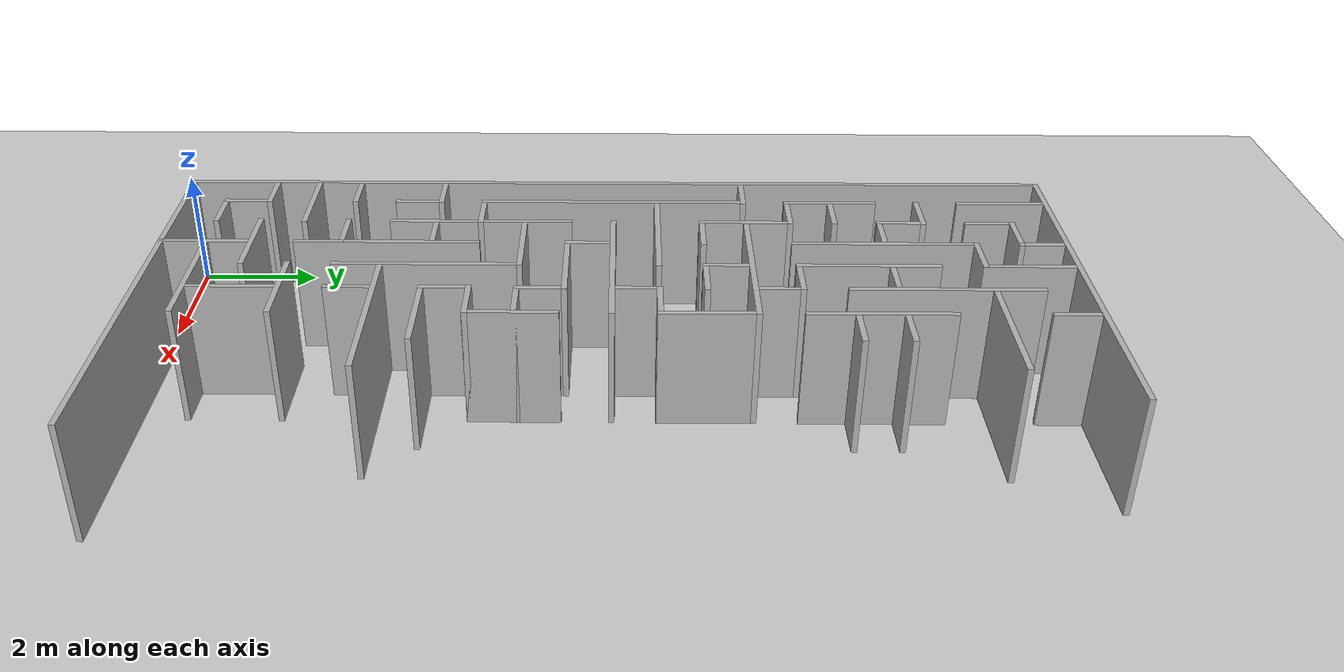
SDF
<sdf version="1.6">
 <world name="slam_world">
  <model name="ground_plane">
   <static>true</static>
   <link name="link">
    <collision name="collision">
     <geometry><plane><normal>0 0 1</normal><size>100 100</size></plane></geometry>
    </collision>
    <visual name="visual">
     <geometry><plane><normal>0 0 1</normal><size>100 100</size></plane></geometry>
     <material>
      <ambient>0.8 0.8 0.8 1</ambient>
      <diffuse>0.8 0.8 0.8 1</diffuse>
      <specular>0.8 0.8 0.8 1</specular>
     </material>
    </visual>
   </link>
  </model>
  <model name="wall_0">
   <static>true</static>
   <pose>3.425925925925926 14.907407407407408 1.0 0 0 0</pose>
   <link name="link">
    <collision name="collision">
     <geometry><box><size>6.7592592592592595 0.0925925925925926 2.0</size></box></geometry>
    </collision>
    <visual name="visual">
     <geometry><box><size>6.7592592592592595 0.0925925925925926 2.0</size></box></geometry>
     <material><ambient>0.5 0.5 0.5 1</ambient><diffuse>0.7 0.7 0.7 1</diffuse></material>
    </visual>
   </link>
  </model>
  <model name="wall_2">
   <static>true</static>
   <pose>0.0925925925925926 7.453703703703704 1.0 0 0 0</pose>
   <link name="link">
    <collision name="collision">
     <geometry><box><size>0.0925925925925926 14.814814814814817 2.0</size></box></geometry>
    </collision>
    <visual name="visual">
     <geometry><box><size>0.0925925925925926 14.814814814814817 2.0</size></box></geometry>
     <material><ambient>0.5 0.5 0.5 1</ambient><diffuse>0.7 0.7 0.7 1</diffuse></material>
    </visual>
   </link>
  </model>
  <model name="wall_3">
   <static>true</static>
   <pose>0.8333333333333334 14.120370370370372 1.0 0 0 0</pose>
   <link name="link">
    <collision name="collision">
     <geometry><box><size>0.0925925925925926 1.4814814814814816 2.0</size></box></geometry>
    </collision>
    <visual name="visual">
     <geometry><box><size>0.0925925925925926 1.4814814814814816 2.0</size></box></geometry>
     <material><ambient>0.5 0.5 0.5 1</ambient><diffuse>0.7 0.7 0.7 1</diffuse></material>
    </visual>
   </link>
  </model>
  <model name="wall_4">
   <static>true</static>
   <pose>2.314814814814815 14.490740740740742 1.0 0 0 0</pose>
   <link name="link">
    <collision name="collision">
     <geometry><box><size>0.0925925925925926 0.7407407407407408 2.0</size></box></geometry>
    </collision>
    <visual name="visual">
     <geometry><box><size>0.0925925925925926 0.7407407407407408 2.0</size></box></geometry>
     <material><ambient>0.5 0.5 0.5 1</ambient><diffuse>0.7 0.7 0.7 1</diffuse></material>
    </visual>
   </link>
  </model>
  <model name="wall_5">
   <static>true</static>
   <pose>3.055555555555556 14.120370370370372 1.0 0 0 0</pose>
   <link name="link">
    <collision name="collision">
     <geometry><box><size>0.0925925925925926 1.4814814814814816 2.0</size></box></geometry>
    </collision>
    <visual name="visual">
     <geometry><box><size>0.0925925925925926 1.4814814814814816 2.0</size></box></geometry>
     <material><ambient>0.5 0.5 0.5 1</ambient><diffuse>0.7 0.7 0.7 1</diffuse></material>
    </visual>
   </link>
  </model>
  <model name="wall_6">
   <static>true</static>
   <pose>4.537037037037037 14.490740740740742 1.0 0 0 0</pose>
   <link name="link">
    <collision name="collision">
     <geometry><box><size>0.0925925925925926 0.7407407407407408 2.0</size></box></geometry>
    </collision>
    <visual name="visual">
     <geometry><box><size>0.0925925925925926 0.7407407407407408 2.0</size></box></geometry>
     <material><ambient>0.5 0.5 0.5 1</ambient><diffuse>0.7 0.7 0.7 1</diffuse></material>
    </visual>
   </link>
  </model>
  <model name="wall_11">
   <static>true</static>
   <pose>1.9444444444444446 14.166666666666668 1.0 0 0 0</pose>
   <link name="link">
    <collision name="collision">
     <geometry><box><size>0.8333333333333334 0.0925925925925926 2.0</size></box></geometry>
    </collision>
    <visual name="visual">
     <geometry><box><size>0.8333333333333334 0.0925925925925926 2.0</size></box></geometry>
     <material><ambient>0.5 0.5 0.5 1</ambient><diffuse>0.7 0.7 0.7 1</diffuse></material>
    </visual>
   </link>
  </model>
  <model name="wall_12">
   <static>true</static>
   <pose>3.7962962962962967 12.685185185185187 1.0 0 0 0</pose>
   <link name="link">
    <collision name="collision">
     <geometry><box><size>0.0925925925925926 3.055555555555556 2.0</size></box></geometry>
    </collision>
    <visual name="visual">
     <geometry><box><size>0.0925925925925926 3.055555555555556 2.0</size></box></geometry>
     <material><ambient>0.5 0.5 0.5 1</ambient><diffuse>0.7 0.7 0.7 1</diffuse></material>
    </visual>
   </link>
  </model>
  <model name="wall_20">
   <static>true</static>
   <pose>1.5740740740740742 13.750000000000002 1.0 0 0 0</pose>
   <link name="link">
    <collision name="collision">
     <geometry><box><size>0.0925925925925926 0.7407407407407408 2.0</size></box></geometry>
    </collision>
    <visual name="visual">
     <geometry><box><size>0.0925925925925926 0.7407407407407408 2.0</size></box></geometry>
     <material><ambient>0.5 0.5 0.5 1</ambient><diffuse>0.7 0.7 0.7 1</diffuse></material>
    </visual>
   </link>
  </model>
  <model name="wall_24">
   <static>true</static>
   <pose>2.6851851851851856 13.425925925925927 1.0 0 0 0</pose>
   <link name="link">
    <collision name="collision">
     <geometry><box><size>0.8333333333333334 0.0925925925925926 2.0</size></box></geometry>
    </collision>
    <visual name="visual">
     <geometry><box><size>0.8333333333333334 0.0925925925925926 2.0</size></box></geometry>
     <material><ambient>0.5 0.5 0.5 1</ambient><diffuse>0.7 0.7 0.7 1</diffuse></material>
    </visual>
   </link>
  </model>
  <model name="wall_25">
   <static>true</static>
   <pose>4.953703703703704 13.425925925925927 1.0 0 0 0</pose>
   <link name="link">
    <collision name="collision">
     <geometry><box><size>2.2222222222222223 0.0925925925925926 2.0</size></box></geometry>
    </collision>
    <visual name="visual">
     <geometry><box><size>2.2222222222222223 0.0925925925925926 2.0</size></box></geometry>
     <material><ambient>0.5 0.5 0.5 1</ambient><diffuse>0.7 0.7 0.7 1</diffuse></material>
    </visual>
   </link>
  </model>
  <model name="wall_29">
   <static>true</static>
   <pose>2.314814814814815 11.898148148148149 1.0 0 0 0</pose>
   <link name="link">
    <collision name="collision">
     <geometry><box><size>0.0925925925925926 2.9629629629629632 2.0</size></box></geometry>
    </collision>
    <visual name="visual">
     <geometry><box><size>0.0925925925925926 2.9629629629629632 2.0</size></box></geometry>
     <material><ambient>0.5 0.5 0.5 1</ambient><diffuse>0.7 0.7 0.7 1</diffuse></material>
    </visual>
   </link>
  </model>
  <model name="wall_31">
   <static>true</static>
   <pose>1.2037037037037037 12.685185185185187 1.0 0 0 0</pose>
   <link name="link">
    <collision name="collision">
     <geometry><box><size>0.8333333333333334 0.0925925925925926 2.0</size></box></geometry>
    </collision>
    <visual name="visual">
     <geometry><box><size>0.8333333333333334 0.0925925925925926 2.0</size></box></geometry>
     <material><ambient>0.5 0.5 0.5 1</ambient><diffuse>0.7 0.7 0.7 1</diffuse></material>
    </visual>
   </link>
  </model>
  <model name="wall_32">
   <static>true</static>
   <pose>3.055555555555556 11.574074074074074 1.0 0 0 0</pose>
   <link name="link">
    <collision name="collision">
     <geometry><box><size>0.0925925925925926 2.314814814814815 2.0</size></box></geometry>
    </collision>
    <visual name="visual">
     <geometry><box><size>0.0925925925925926 2.314814814814815 2.0</size></box></geometry>
     <material><ambient>0.5 0.5 0.5 1</ambient><diffuse>0.7 0.7 0.7 1</diffuse></material>
    </visual>
   </link>
  </model>
  <model name="wall_33">
   <static>true</static>
   <pose>4.537037037037037 11.574074074074074 1.0 0 0 0</pose>
   <link name="link">
    <collision name="collision">
     <geometry><box><size>0.0925925925925926 2.314814814814815 2.0</size></box></geometry>
    </collision>
    <visual name="visual">
     <geometry><box><size>0.0925925925925926 2.314814814814815 2.0</size></box></geometry>
     <material><ambient>0.5 0.5 0.5 1</ambient><diffuse>0.7 0.7 0.7 1</diffuse></material>
    </visual>
   </link>
  </model>
  <model name="wall_38">
   <static>true</static>
   <pose>1.5740740740740742 12.268518518518519 1.0 0 0 0</pose>
   <link name="link">
    <collision name="collision">
     <geometry><box><size>0.0925925925925926 0.7407407407407408 2.0</size></box></geometry>
    </collision>
    <visual name="visual">
     <geometry><box><size>0.0925925925925926 0.7407407407407408 2.0</size></box></geometry>
     <material><ambient>0.5 0.5 0.5 1</ambient><diffuse>0.7 0.7 0.7 1</diffuse></material>
    </visual>
   </link>
  </model>
  <model name="wall_41">
   <static>true</static>
   <pose>0.8333333333333334 11.203703703703704 1.0 0 0 0</pose>
   <link name="link">
    <collision name="collision">
     <geometry><box><size>0.0925925925925926 1.5740740740740742 2.0</size></box></geometry>
    </collision>
    <visual name="visual">
     <geometry><box><size>0.0925925925925926 1.5740740740740742 2.0</size></box></geometry>
     <material><ambient>0.5 0.5 0.5 1</ambient><diffuse>0.7 0.7 0.7 1</diffuse></material>
    </visual>
   </link>
  </model>
  <model name="wall_42">
   <static>true</static>
   <pose>1.990740740740741 11.944444444444446 1.0 0 0 0</pose>
   <link name="link">
    <collision name="collision">
     <geometry><box><size>0.7407407407407408 0.0925925925925926 2.0</size></box></geometry>
    </collision>
    <visual name="visual">
     <geometry><box><size>0.7407407407407408 0.0925925925925926 2.0</size></box></geometry>
     <material><ambient>0.5 0.5 0.5 1</ambient><diffuse>0.7 0.7 0.7 1</diffuse></material>
    </visual>
   </link>
  </model>
  <model name="wall_43">
   <static>true</static>
   <pose>3.4722222222222228 11.944444444444446 1.0 0 0 0</pose>
   <link name="link">
    <collision name="collision">
     <geometry><box><size>0.7407407407407408 0.0925925925925926 2.0</size></box></geometry>
    </collision>
    <visual name="visual">
     <geometry><box><size>0.7407407407407408 0.0925925925925926 2.0</size></box></geometry>
     <material><ambient>0.5 0.5 0.5 1</ambient><diffuse>0.7 0.7 0.7 1</diffuse></material>
    </visual>
   </link>
  </model>
  <model name="wall_44">
   <static>true</static>
   <pose>4.953703703703704 11.944444444444446 1.0 0 0 0</pose>
   <link name="link">
    <collision name="collision">
     <geometry><box><size>0.7407407407407408 0.0925925925925926 2.0</size></box></geometry>
    </collision>
    <visual name="visual">
     <geometry><box><size>0.7407407407407408 0.0925925925925926 2.0</size></box></geometry>
     <material><ambient>0.5 0.5 0.5 1</ambient><diffuse>0.7 0.7 0.7 1</diffuse></material>
    </visual>
   </link>
  </model>
  <model name="wall_52">
   <static>true</static>
   <pose>1.2500000000000002 11.203703703703704 1.0 0 0 0</pose>
   <link name="link">
    <collision name="collision">
     <geometry><box><size>0.7407407407407408 0.0925925925925926 2.0</size></box></geometry>
    </collision>
    <visual name="visual">
     <geometry><box><size>0.7407407407407408 0.0925925925925926 2.0</size></box></geometry>
     <material><ambient>0.5 0.5 0.5 1</ambient><diffuse>0.7 0.7 0.7 1</diffuse></material>
    </visual>
   </link>
  </model>
  <model name="wall_53">
   <static>true</static>
   <pose>4.953703703703704 11.203703703703704 1.0 0 0 0</pose>
   <link name="link">
    <collision name="collision">
     <geometry><box><size>0.7407407407407408 0.0925925925925926 2.0</size></box></geometry>
    </collision>
    <visual name="visual">
     <geometry><box><size>0.7407407407407408 0.0925925925925926 2.0</size></box></geometry>
     <material><ambient>0.5 0.5 0.5 1</ambient><diffuse>0.7 0.7 0.7 1</diffuse></material>
    </visual>
   </link>
  </model>
  <model name="wall_62">
   <static>true</static>
   <pose>1.2500000000000002 10.462962962962964 1.0 0 0 0</pose>
   <link name="link">
    <collision name="collision">
     <geometry><box><size>0.7407407407407408 0.0925925925925926 2.0</size></box></geometry>
    </collision>
    <visual name="visual">
     <geometry><box><size>0.7407407407407408 0.0925925925925926 2.0</size></box></geometry>
     <material><ambient>0.5 0.5 0.5 1</ambient><diffuse>0.7 0.7 0.7 1</diffuse></material>
    </visual>
   </link>
  </model>
  <model name="wall_63">
   <static>true</static>
   <pose>3.4722222222222228 10.462962962962964 1.0 0 0 0</pose>
   <link name="link">
    <collision name="collision">
     <geometry><box><size>0.7407407407407408 0.0925925925925926 2.0</size></box></geometry>
    </collision>
    <visual name="visual">
     <geometry><box><size>0.7407407407407408 0.0925925925925926 2.0</size></box></geometry>
     <material><ambient>0.5 0.5 0.5 1</ambient><diffuse>0.7 0.7 0.7 1</diffuse></material>
    </visual>
   </link>
  </model>
  <model name="wall_70">
   <static>true</static>
   <pose>1.5740740740740742 9.675925925925927 1.0 0 0 0</pose>
   <link name="link">
    <collision name="collision">
     <geometry><box><size>0.0925925925925926 1.4814814814814816 2.0</size></box></geometry>
    </collision>
    <visual name="visual">
     <geometry><box><size>0.0925925925925926 1.4814814814814816 2.0</size></box></geometry>
     <material><ambient>0.5 0.5 0.5 1</ambient><diffuse>0.7 0.7 0.7 1</diffuse></material>
    </visual>
   </link>
  </model>
  <model name="wall_71">
   <static>true</static>
   <pose>3.7962962962962967 10.046296296296298 1.0 0 0 0</pose>
   <link name="link">
    <collision name="collision">
     <geometry><box><size>0.0925925925925926 0.7407407407407408 2.0</size></box></geometry>
    </collision>
    <visual name="visual">
     <geometry><box><size>0.0925925925925926 0.7407407407407408 2.0</size></box></geometry>
     <material><ambient>0.5 0.5 0.5 1</ambient><diffuse>0.7 0.7 0.7 1</diffuse></material>
    </visual>
   </link>
  </model>
  <model name="wall_72">
   <static>true</static>
   <pose>0.5092592592592593 9.722222222222223 1.0 0 0 0</pose>
   <link name="link">
    <collision name="collision">
     <geometry><box><size>0.7407407407407408 0.0925925925925926 2.0</size></box></geometry>
    </collision>
    <visual name="visual">
     <geometry><box><size>0.7407407407407408 0.0925925925925926 2.0</size></box></geometry>
     <material><ambient>0.5 0.5 0.5 1</ambient><diffuse>0.7 0.7 0.7 1</diffuse></material>
    </visual>
   </link>
  </model>
  <model name="wall_73">
   <static>true</static>
   <pose>3.101851851851852 9.722222222222223 1.0 0 0 0</pose>
   <link name="link">
    <collision name="collision">
     <geometry><box><size>2.9629629629629632 0.0925925925925926 2.0</size></box></geometry>
    </collision>
    <visual name="visual">
     <geometry><box><size>2.9629629629629632 0.0925925925925926 2.0</size></box></geometry>
     <material><ambient>0.5 0.5 0.5 1</ambient><diffuse>0.7 0.7 0.7 1</diffuse></material>
    </visual>
   </link>
  </model>
  <model name="wall_79">
   <static>true</static>
   <pose>0.8333333333333334 7.453703703703704 1.0 0 0 0</pose>
   <link name="link">
    <collision name="collision">
     <geometry><box><size>0.0925925925925926 4.444444444444445 2.0</size></box></geometry>
    </collision>
    <visual name="visual">
     <geometry><box><size>0.0925925925925926 4.444444444444445 2.0</size></box></geometry>
     <material><ambient>0.5 0.5 0.5 1</ambient><diffuse>0.7 0.7 0.7 1</diffuse></material>
    </visual>
   </link>
  </model>
  <model name="wall_80">
   <static>true</static>
   <pose>3.055555555555556 9.305555555555557 1.0 0 0 0</pose>
   <link name="link">
    <collision name="collision">
     <geometry><box><size>0.0925925925925926 0.7407407407407408 2.0</size></box></geometry>
    </collision>
    <visual name="visual">
     <geometry><box><size>0.0925925925925926 0.7407407407407408 2.0</size></box></geometry>
     <material><ambient>0.5 0.5 0.5 1</ambient><diffuse>0.7 0.7 0.7 1</diffuse></material>
    </visual>
   </link>
  </model>
  <model name="wall_81">
   <static>true</static>
   <pose>4.537037037037037 8.935185185185187 1.0 0 0 0</pose>
   <link name="link">
    <collision name="collision">
     <geometry><box><size>0.0925925925925926 1.4814814814814816 2.0</size></box></geometry>
    </collision>
    <visual name="visual">
     <geometry><box><size>0.0925925925925926 1.4814814814814816 2.0</size></box></geometry>
     <material><ambient>0.5 0.5 0.5 1</ambient><diffuse>0.7 0.7 0.7 1</diffuse></material>
    </visual>
   </link>
  </model>
  <model name="wall_83">
   <static>true</static>
   <pose>1.990740740740741 8.981481481481483 1.0 0 0 0</pose>
   <link name="link">
    <collision name="collision">
     <geometry><box><size>0.7407407407407408 0.0925925925925926 2.0</size></box></geometry>
    </collision>
    <visual name="visual">
     <geometry><box><size>0.7407407407407408 0.0925925925925926 2.0</size></box></geometry>
     <material><ambient>0.5 0.5 0.5 1</ambient><diffuse>0.7 0.7 0.7 1</diffuse></material>
    </visual>
   </link>
  </model>
  <model name="wall_84">
   <static>true</static>
   <pose>3.4722222222222228 8.981481481481483 1.0 0 0 0</pose>
   <link name="link">
    <collision name="collision">
     <geometry><box><size>0.7407407407407408 0.0925925925925926 2.0</size></box></geometry>
    </collision>
    <visual name="visual">
     <geometry><box><size>0.7407407407407408 0.0925925925925926 2.0</size></box></geometry>
     <material><ambient>0.5 0.5 0.5 1</ambient><diffuse>0.7 0.7 0.7 1</diffuse></material>
    </visual>
   </link>
  </model>
  <model name="wall_93">
   <static>true</static>
   <pose>1.990740740740741 8.240740740740742 1.0 0 0 0</pose>
   <link name="link">
    <collision name="collision">
     <geometry><box><size>2.2222222222222223 0.0925925925925926 2.0</size></box></geometry>
    </collision>
    <visual name="visual">
     <geometry><box><size>2.2222222222222223 0.0925925925925926 2.0</size></box></geometry>
     <material><ambient>0.5 0.5 0.5 1</ambient><diffuse>0.7 0.7 0.7 1</diffuse></material>
    </visual>
   </link>
  </model>
  <model name="wall_94">
   <static>true</static>
   <pose>4.166666666666667 8.240740740740742 1.0 0 0 0</pose>
   <link name="link">
    <collision name="collision">
     <geometry><box><size>0.8333333333333334 0.0925925925925926 2.0</size></box></geometry>
    </collision>
    <visual name="visual">
     <geometry><box><size>0.8333333333333334 0.0925925925925926 2.0</size></box></geometry>
     <material><ambient>0.5 0.5 0.5 1</ambient><diffuse>0.7 0.7 0.7 1</diffuse></material>
    </visual>
   </link>
  </model>
  <model name="wall_100">
   <static>true</static>
   <pose>3.7962962962962967 7.824074074074074 1.0 0 0 0</pose>
   <link name="link">
    <collision name="collision">
     <geometry><box><size>0.0925925925925926 0.7407407407407408 2.0</size></box></geometry>
    </collision>
    <visual name="visual">
     <geometry><box><size>0.0925925925925926 0.7407407407407408 2.0</size></box></geometry>
     <material><ambient>0.5 0.5 0.5 1</ambient><diffuse>0.7 0.7 0.7 1</diffuse></material>
    </visual>
   </link>
  </model>
  <model name="wall_105">
   <static>true</static>
   <pose>3.055555555555556 7.500000000000001 1.0 0 0 0</pose>
   <link name="link">
    <collision name="collision">
     <geometry><box><size>3.055555555555556 0.0925925925925926 2.0</size></box></geometry>
    </collision>
    <visual name="visual">
     <geometry><box><size>3.055555555555556 0.0925925925925926 2.0</size></box></geometry>
     <material><ambient>0.5 0.5 0.5 1</ambient><diffuse>0.7 0.7 0.7 1</diffuse></material>
    </visual>
   </link>
  </model>
  <model name="wall_110">
   <static>true</static>
   <pose>2.314814814814815 7.083333333333334 1.0 0 0 0</pose>
   <link name="link">
    <collision name="collision">
     <geometry><box><size>0.0925925925925926 0.7407407407407408 2.0</size></box></geometry>
    </collision>
    <visual name="visual">
     <geometry><box><size>0.0925925925925926 0.7407407407407408 2.0</size></box></geometry>
     <material><ambient>0.5 0.5 0.5 1</ambient><diffuse>0.7 0.7 0.7 1</diffuse></material>
    </visual>
   </link>
  </model>
  <model name="wall_111">
   <static>true</static>
   <pose>1.5740740740740742 5.277777777777779 1.0 0 0 0</pose>
   <link name="link">
    <collision name="collision">
     <geometry><box><size>0.0925925925925926 3.055555555555556 2.0</size></box></geometry>
    </collision>
    <visual name="visual">
     <geometry><box><size>0.0925925925925926 3.055555555555556 2.0</size></box></geometry>
     <material><ambient>0.5 0.5 0.5 1</ambient><diffuse>0.7 0.7 0.7 1</diffuse></material>
    </visual>
   </link>
  </model>
  <model name="wall_112">
   <static>true</static>
   <pose>3.101851851851852 6.7592592592592595 1.0 0 0 0</pose>
   <link name="link">
    <collision name="collision">
     <geometry><box><size>1.4814814814814816 0.0925925925925926 2.0</size></box></geometry>
    </collision>
    <visual name="visual">
     <geometry><box><size>1.4814814814814816 0.0925925925925926 2.0</size></box></geometry>
     <material><ambient>0.5 0.5 0.5 1</ambient><diffuse>0.7 0.7 0.7 1</diffuse></material>
    </visual>
   </link>
  </model>
  <model name="wall_117">
   <static>true</static>
   <pose>3.7962962962962967 6.3425925925925934 1.0 0 0 0</pose>
   <link name="link">
    <collision name="collision">
     <geometry><box><size>0.0925925925925926 0.7407407407407408 2.0</size></box></geometry>
    </collision>
    <visual name="visual">
     <geometry><box><size>0.0925925925925926 0.7407407407407408 2.0</size></box></geometry>
     <material><ambient>0.5 0.5 0.5 1</ambient><diffuse>0.7 0.7 0.7 1</diffuse></material>
    </visual>
   </link>
  </model>
  <model name="wall_118">
   <static>true</static>
   <pose>4.537037037037037 5.972222222222223 1.0 0 0 0</pose>
   <link name="link">
    <collision name="collision">
     <geometry><box><size>0.0925925925925926 1.4814814814814816 2.0</size></box></geometry>
    </collision>
    <visual name="visual">
     <geometry><box><size>0.0925925925925926 1.4814814814814816 2.0</size></box></geometry>
     <material><ambient>0.5 0.5 0.5 1</ambient><diffuse>0.7 0.7 0.7 1</diffuse></material>
    </visual>
   </link>
  </model>
  <model name="wall_119">
   <static>true</static>
   <pose>2.361111111111111 6.018518518518519 1.0 0 0 0</pose>
   <link name="link">
    <collision name="collision">
     <geometry><box><size>1.4814814814814816 0.0925925925925926 2.0</size></box></geometry>
    </collision>
    <visual name="visual">
     <geometry><box><size>1.4814814814814816 0.0925925925925926 2.0</size></box></geometry>
     <material><ambient>0.5 0.5 0.5 1</ambient><diffuse>0.7 0.7 0.7 1</diffuse></material>
    </visual>
   </link>
  </model>
  <model name="wall_120">
   <static>true</static>
   <pose>4.212962962962964 6.018518518518519 1.0 0 0 0</pose>
   <link name="link">
    <collision name="collision">
     <geometry><box><size>0.7407407407407408 0.0925925925925926 2.0</size></box></geometry>
    </collision>
    <visual name="visual">
     <geometry><box><size>0.7407407407407408 0.0925925925925926 2.0</size></box></geometry>
     <material><ambient>0.5 0.5 0.5 1</ambient><diffuse>0.7 0.7 0.7 1</diffuse></material>
    </visual>
   </link>
  </model>
  <model name="wall_126">
   <static>true</static>
   <pose>3.055555555555556 4.490740740740741 1.0 0 0 0</pose>
   <link name="link">
    <collision name="collision">
     <geometry><box><size>0.0925925925925926 2.9629629629629632 2.0</size></box></geometry>
    </collision>
    <visual name="visual">
     <geometry><box><size>0.0925925925925926 2.9629629629629632 2.0</size></box></geometry>
     <material><ambient>0.5 0.5 0.5 1</ambient><diffuse>0.7 0.7 0.7 1</diffuse></material>
    </visual>
   </link>
  </model>
  <model name="wall_132">
   <static>true</static>
   <pose>1.2500000000000002 5.277777777777779 1.0 0 0 0</pose>
   <link name="link">
    <collision name="collision">
     <geometry><box><size>0.7407407407407408 0.0925925925925926 2.0</size></box></geometry>
    </collision>
    <visual name="visual">
     <geometry><box><size>0.7407407407407408 0.0925925925925926 2.0</size></box></geometry>
     <material><ambient>0.5 0.5 0.5 1</ambient><diffuse>0.7 0.7 0.7 1</diffuse></material>
    </visual>
   </link>
  </model>
  <model name="wall_133">
   <static>true</static>
   <pose>2.314814814814815 3.7962962962962967 1.0 0 0 0</pose>
   <link name="link">
    <collision name="collision">
     <geometry><box><size>0.0925925925925926 3.055555555555556 2.0</size></box></geometry>
    </collision>
    <visual name="visual">
     <geometry><box><size>0.0925925925925926 3.055555555555556 2.0</size></box></geometry>
     <material><ambient>0.5 0.5 0.5 1</ambient><diffuse>0.7 0.7 0.7 1</diffuse></material>
    </visual>
   </link>
  </model>
  <model name="wall_134">
   <static>true</static>
   <pose>4.166666666666667 5.277777777777779 1.0 0 0 0</pose>
   <link name="link">
    <collision name="collision">
     <geometry><box><size>0.8333333333333334 0.0925925925925926 2.0</size></box></geometry>
    </collision>
    <visual name="visual">
     <geometry><box><size>0.8333333333333334 0.0925925925925926 2.0</size></box></geometry>
     <material><ambient>0.5 0.5 0.5 1</ambient><diffuse>0.7 0.7 0.7 1</diffuse></material>
    </visual>
   </link>
  </model>
  <model name="wall_140">
   <static>true</static>
   <pose>3.7962962962962967 4.861111111111112 1.0 0 0 0</pose>
   <link name="link">
    <collision name="collision">
     <geometry><box><size>0.0925925925925926 0.7407407407407408 2.0</size></box></geometry>
    </collision>
    <visual name="visual">
     <geometry><box><size>0.0925925925925926 0.7407407407407408 2.0</size></box></geometry>
     <material><ambient>0.5 0.5 0.5 1</ambient><diffuse>0.7 0.7 0.7 1</diffuse></material>
    </visual>
   </link>
  </model>
  <model name="wall_145">
   <static>true</static>
   <pose>0.5092592592592593 4.537037037037037 1.0 0 0 0</pose>
   <link name="link">
    <collision name="collision">
     <geometry><box><size>0.7407407407407408 0.0925925925925926 2.0</size></box></geometry>
    </collision>
    <visual name="visual">
     <geometry><box><size>0.7407407407407408 0.0925925925925926 2.0</size></box></geometry>
     <material><ambient>0.5 0.5 0.5 1</ambient><diffuse>0.7 0.7 0.7 1</diffuse></material>
    </visual>
   </link>
  </model>
  <model name="wall_146">
   <static>true</static>
   <pose>1.990740740740741 4.537037037037037 1.0 0 0 0</pose>
   <link name="link">
    <collision name="collision">
     <geometry><box><size>0.7407407407407408 0.0925925925925926 2.0</size></box></geometry>
    </collision>
    <visual name="visual">
     <geometry><box><size>0.7407407407407408 0.0925925925925926 2.0</size></box></geometry>
     <material><ambient>0.5 0.5 0.5 1</ambient><diffuse>0.7 0.7 0.7 1</diffuse></material>
    </visual>
   </link>
  </model>
  <model name="wall_147">
   <static>true</static>
   <pose>4.583333333333334 4.537037037037037 1.0 0 0 0</pose>
   <link name="link">
    <collision name="collision">
     <geometry><box><size>1.4814814814814816 0.0925925925925926 2.0</size></box></geometry>
    </collision>
    <visual name="visual">
     <geometry><box><size>1.4814814814814816 0.0925925925925926 2.0</size></box></geometry>
     <material><ambient>0.5 0.5 0.5 1</ambient><diffuse>0.7 0.7 0.7 1</diffuse></material>
    </visual>
   </link>
  </model>
  <model name="wall_151">
   <static>true</static>
   <pose>0.8333333333333334 4.120370370370371 1.0 0 0 0</pose>
   <link name="link">
    <collision name="collision">
     <geometry><box><size>0.0925925925925926 0.7407407407407408 2.0</size></box></geometry>
    </collision>
    <visual name="visual">
     <geometry><box><size>0.0925925925925926 0.7407407407407408 2.0</size></box></geometry>
     <material><ambient>0.5 0.5 0.5 1</ambient><diffuse>0.7 0.7 0.7 1</diffuse></material>
    </visual>
   </link>
  </model>
  <model name="wall_152">
   <static>true</static>
   <pose>4.583333333333334 3.7962962962962967 1.0 0 0 0</pose>
   <link name="link">
    <collision name="collision">
     <geometry><box><size>2.9629629629629632 0.0925925925925926 2.0</size></box></geometry>
    </collision>
    <visual name="visual">
     <geometry><box><size>2.9629629629629632 0.0925925925925926 2.0</size></box></geometry>
     <material><ambient>0.5 0.5 0.5 1</ambient><diffuse>0.7 0.7 0.7 1</diffuse></material>
    </visual>
   </link>
  </model>
  <model name="wall_157">
   <static>true</static>
   <pose>3.7962962962962967 3.3796296296296298 1.0 0 0 0</pose>
   <link name="link">
    <collision name="collision">
     <geometry><box><size>0.0925925925925926 0.7407407407407408 2.0</size></box></geometry>
    </collision>
    <visual name="visual">
     <geometry><box><size>0.0925925925925926 0.7407407407407408 2.0</size></box></geometry>
     <material><ambient>0.5 0.5 0.5 1</ambient><diffuse>0.7 0.7 0.7 1</diffuse></material>
    </visual>
   </link>
  </model>
  <model name="wall_161">
   <static>true</static>
   <pose>0.5092592592592593 3.055555555555556 1.0 0 0 0</pose>
   <link name="link">
    <collision name="collision">
     <geometry><box><size>0.7407407407407408 0.0925925925925926 2.0</size></box></geometry>
    </collision>
    <visual name="visual">
     <geometry><box><size>0.7407407407407408 0.0925925925925926 2.0</size></box></geometry>
     <material><ambient>0.5 0.5 0.5 1</ambient><diffuse>0.7 0.7 0.7 1</diffuse></material>
    </visual>
   </link>
  </model>
  <model name="wall_162">
   <static>true</static>
   <pose>1.9444444444444446 3.055555555555556 1.0 0 0 0</pose>
   <link name="link">
    <collision name="collision">
     <geometry><box><size>0.8333333333333334 0.0925925925925926 2.0</size></box></geometry>
    </collision>
    <visual name="visual">
     <geometry><box><size>0.8333333333333334 0.0925925925925926 2.0</size></box></geometry>
     <material><ambient>0.5 0.5 0.5 1</ambient><diffuse>0.7 0.7 0.7 1</diffuse></material>
    </visual>
   </link>
  </model>
  <model name="wall_171">
   <static>true</static>
   <pose>0.8796296296296298 2.314814814814815 1.0 0 0 0</pose>
   <link name="link">
    <collision name="collision">
     <geometry><box><size>1.4814814814814816 0.0925925925925926 2.0</size></box></geometry>
    </collision>
    <visual name="visual">
     <geometry><box><size>1.4814814814814816 0.0925925925925926 2.0</size></box></geometry>
     <material><ambient>0.5 0.5 0.5 1</ambient><diffuse>0.7 0.7 0.7 1</diffuse></material>
    </visual>
   </link>
  </model>
  <model name="wall_172">
   <static>true</static>
   <pose>3.7962962962962967 2.314814814814815 1.0 0 0 0</pose>
   <link name="link">
    <collision name="collision">
     <geometry><box><size>1.5740740740740742 0.0925925925925926 2.0</size></box></geometry>
    </collision>
    <visual name="visual">
     <geometry><box><size>1.5740740740740742 0.0925925925925926 2.0</size></box></geometry>
     <material><ambient>0.5 0.5 0.5 1</ambient><diffuse>0.7 0.7 0.7 1</diffuse></material>
    </visual>
   </link>
  </model>
  <model name="wall_177">
   <static>true</static>
   <pose>3.7962962962962967 1.527777777777778 1.0 0 0 0</pose>
   <link name="link">
    <collision name="collision">
     <geometry><box><size>0.0925925925925926 1.4814814814814816 2.0</size></box></geometry>
    </collision>
    <visual name="visual">
     <geometry><box><size>0.0925925925925926 1.4814814814814816 2.0</size></box></geometry>
     <material><ambient>0.5 0.5 0.5 1</ambient><diffuse>0.7 0.7 0.7 1</diffuse></material>
    </visual>
   </link>
  </model>
  <model name="wall_180">
   <static>true</static>
   <pose>0.5092592592592593 1.5740740740740742 1.0 0 0 0</pose>
   <link name="link">
    <collision name="collision">
     <geometry><box><size>0.7407407407407408 0.0925925925925926 2.0</size></box></geometry>
    </collision>
    <visual name="visual">
     <geometry><box><size>0.7407407407407408 0.0925925925925926 2.0</size></box></geometry>
     <material><ambient>0.5 0.5 0.5 1</ambient><diffuse>0.7 0.7 0.7 1</diffuse></material>
    </visual>
   </link>
  </model>
  <model name="wall_181">
   <static>true</static>
   <pose>2.314814814814815 1.5740740740740742 1.0 0 0 0</pose>
   <link name="link">
    <collision name="collision">
     <geometry><box><size>1.5740740740740742 0.0925925925925926 2.0</size></box></geometry>
    </collision>
    <visual name="visual">
     <geometry><box><size>1.5740740740740742 0.0925925925925926 2.0</size></box></geometry>
     <material><ambient>0.5 0.5 0.5 1</ambient><diffuse>0.7 0.7 0.7 1</diffuse></material>
    </visual>
   </link>
  </model>
  <model name="wall_185">
   <static>true</static>
   <pose>0.8333333333333334 1.1574074074074074 1.0 0 0 0</pose>
   <link name="link">
    <collision name="collision">
     <geometry><box><size>0.0925925925925926 0.7407407407407408 2.0</size></box></geometry>
    </collision>
    <visual name="visual">
     <geometry><box><size>0.0925925925925926 0.7407407407407408 2.0</size></box></geometry>
     <material><ambient>0.5 0.5 0.5 1</ambient><diffuse>0.7 0.7 0.7 1</diffuse></material>
    </visual>
   </link>
  </model>
  <model name="wall_186">
   <static>true</static>
   <pose>2.314814814814815 0.7870370370370371 1.0 0 0 0</pose>
   <link name="link">
    <collision name="collision">
     <geometry><box><size>0.0925925925925926 1.4814814814814816 2.0</size></box></geometry>
    </collision>
    <visual name="visual">
     <geometry><box><size>0.0925925925925926 1.4814814814814816 2.0</size></box></geometry>
     <material><ambient>0.5 0.5 0.5 1</ambient><diffuse>0.7 0.7 0.7 1</diffuse></material>
    </visual>
   </link>
  </model>
  <model name="wall_193">
   <static>true</static>
   <pose>1.2500000000000002 0.8333333333333334 1.0 0 0 0</pose>
   <link name="link">
    <collision name="collision">
     <geometry><box><size>0.7407407407407408 0.0925925925925926 2.0</size></box></geometry>
    </collision>
    <visual name="visual">
     <geometry><box><size>0.7407407407407408 0.0925925925925926 2.0</size></box></geometry>
     <material><ambient>0.5 0.5 0.5 1</ambient><diffuse>0.7 0.7 0.7 1</diffuse></material>
    </visual>
   </link>
  </model>
  <model name="wall_194">
   <static>true</static>
   <pose>3.4722222222222228 0.8333333333333334 1.0 0 0 0</pose>
   <link name="link">
    <collision name="collision">
     <geometry><box><size>2.2222222222222223 0.0925925925925926 2.0</size></box></geometry>
    </collision>
    <visual name="visual">
     <geometry><box><size>2.2222222222222223 0.0925925925925926 2.0</size></box></geometry>
     <material><ambient>0.5 0.5 0.5 1</ambient><diffuse>0.7 0.7 0.7 1</diffuse></material>
    </visual>
   </link>
  </model>
  <model name="wall_200">
   <static>true</static>
   <pose>3.842592592592593 0.0925925925925926 1.0 0 0 0</pose>
   <link name="link">
    <collision name="collision">
     <geometry><box><size>7.407407407407408 0.0925925925925926 2.0</size></box></geometry>
    </collision>
    <visual name="visual">
     <geometry><box><size>7.407407407407408 0.0925925925925926 2.0</size></box></geometry>
     <material><ambient>0.5 0.5 0.5 1</ambient><diffuse>0.7 0.7 0.7 1</diffuse></material>
    </visual>
   </link>
  </model>
 </world>
</sdf>
